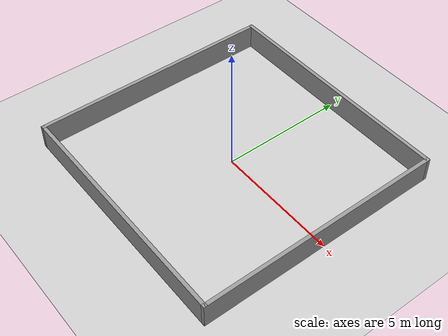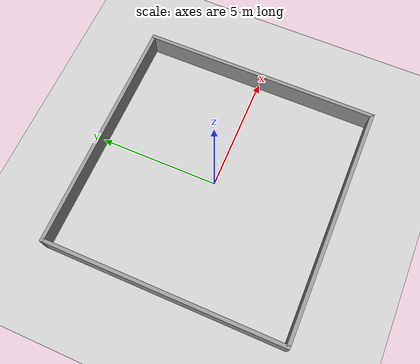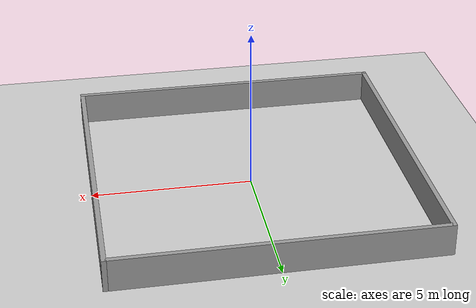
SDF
<?xml version="1.0"?>
<sdf version="1.6">
  <world name="default">

    <include>
      <uri>model://ground_plane</uri>
    </include>

    <include>
      <uri>model://sun</uri>
    </include>

    <include>
      <uri>model://empty_room</uri>
    </include>

    <scene>
      <shadows>false</shadows>
    </scene>

    <gui fullscreen='0'>
      <camera name='user_camera'>
        <pose frame=''>0 0 10 0 1.570796 0</pose>
        <view_controller>orbit</view_controller>
        <projection_type>perspective</projection_type>
      </camera>
    </gui>

    <physics type="ode">
      <real_time_update_rate>1000.0</real_time_update_rate>
      <max_step_size>0.001</max_step_size>
      <real_time_factor>1</real_time_factor>
      <ode>
        <solver>
          <type>quick</type>
          <iters>150</iters>
          <precon_iters>0</precon_iters>
          <sor>1.400000</sor>
          <use_dynamic_moi_rescaling>1</use_dynamic_moi_rescaling>
        </solver>
        <constraints>
          <cfm>0.00001</cfm>
          <erp>0.2</erp>
          <contact_max_correcting_vel>2000.000000</contact_max_correcting_vel>
          <contact_surface_layer>0.01000</contact_surface_layer>
        </constraints>
      </ode>
    </physics>

  </world>
</sdf>

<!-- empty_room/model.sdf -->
<sdf version='1.6'>
  <model name='empty_room'>
    <static>1</static>
    <pose frame=''>0.0 0.0 0.0 0.0 0.0 0.0</pose>
    <link name='Wall_1'>
      <collision name='Wall_1_Collision'>
        <geometry>
          <box>
            <size>10 0.15 1</size>
          </box>
        </geometry>
	<max_contacts>1</max_contacts>
	<surface>
          <bounce/>
          <friction>
            <ode/>
          </friction>
          <contact>
            <ode/>
          </contact>
        </surface>
        <pose frame=''>0 0 0.5 0 -0 0</pose>
      </collision>
      <visual name='Wall_1_Visual'>
        <pose frame=''>0 0 0.5 0 -0 0</pose>
        <geometry>
          <box>
            <size>10 0.15 1</size>
          </box>
        </geometry>
        <material>
          <script>
            <uri>file://media/materials/scripts/gazebo.material</uri>
            <name>Gazebo/Grey</name>
          </script>
          <ambient>1 1 1 1</ambient>
        </material>
        <meta>
          <layer>0</layer>
        </meta>
      </visual>
      <pose frame=''>-4.925 0 0 0 -0 -1.5708</pose>
    </link>
    <link name='Wall_2'>
      <collision name='Wall_2_Collision'>
        <geometry>
          <box>
            <size>10 0.15 1</size>
          </box>
        </geometry>
	<max_contacts>1</max_contacts>
	<surface>
          <bounce/>
          <friction>
            <ode/>
          </friction>
          <contact>
            <ode/>
          </contact>
        </surface>
        <pose frame=''>0 0 0.5 0 -0 0</pose>
      </collision>
      <visual name='Wall_2_Visual'>
        <pose frame=''>0 0 0.5 0 -0 0</pose>
        <geometry>
          <box>
            <size>10 0.15 1</size>
          </box>
        </geometry>
        <material>
          <script>
            <uri>file://media/materials/scripts/gazebo.material</uri>
            <name>Gazebo/Grey</name>
          </script>
          <ambient>1 1 1 1</ambient>
        </material>
        <meta>
          <layer>0</layer>
        </meta>
      </visual>
      <pose frame=''>-0 -4.925 0 0 -0 0</pose>
    </link>
    <link name='Wall_3'>
      <collision name='Wall_3_Collision'>
        <geometry>
          <box>
            <size>10 0.15 1</size>
          </box>
        </geometry>
	<max_contacts>1</max_contacts>
	<surface>
          <bounce/>
          <friction>
            <ode/>
          </friction>
          <contact>
            <ode/>
          </contact>
        </surface>
        <pose frame=''>0 0 0.5 0 -0 0</pose>
      </collision>
      <visual name='Wall_3_Visual'>
        <pose frame=''>0 0 0.5 0 -0 0</pose>
        <geometry>
          <box>
            <size>10 0.15 1</size>
          </box>
        </geometry>
        <material>
          <script>
            <uri>file://media/materials/scripts/gazebo.material</uri>
            <name>Gazebo/Grey</name>
          </script>
          <ambient>1 1 1 1</ambient>
        </material>
        <meta>
          <layer>0</layer>
        </meta>
      </visual>
      <pose frame=''>4.925 0 0 0 -0 1.5708</pose>
    </link>
    <link name='Wall_4'>
      <collision name='Wall_4_Collision'>
        <geometry>
          <box>
            <size>10 0.15 1</size>
          </box>
        </geometry>
	<max_contacts>1</max_contacts>
	<surface>
          <bounce/>
          <friction>
            <ode/>
          </friction>
          <contact>
            <ode/>
          </contact>
        </surface>
        <pose frame=''>0 0 0.5 0 -0 0</pose>
      </collision>
      <visual name='Wall_4_Visual'>
        <pose frame=''>0 0 0.5 0 -0 0</pose>
        <geometry>
          <box>
            <size>10 0.15 1</size>
          </box>
        </geometry>
        <material>
          <script>
            <uri>file://media/materials/scripts/gazebo.material</uri>
            <name>Gazebo/Grey</name>
          </script>
          <ambient>1 1 1 1</ambient>
        </material>
        <meta>
          <layer>0</layer>
        </meta>
      </visual>
      <pose frame=''>-0 4.925 0 0 -0 3.14159</pose>
    </link>
    <static>1</static>
  </model>
</sdf>
